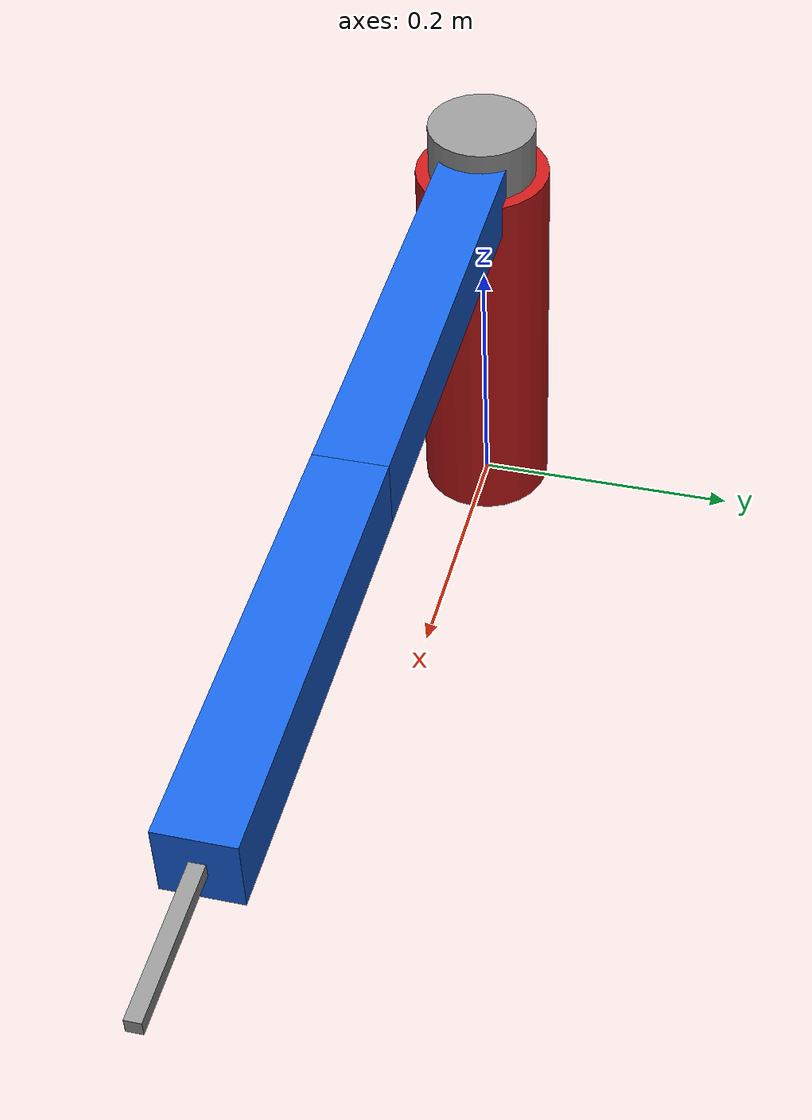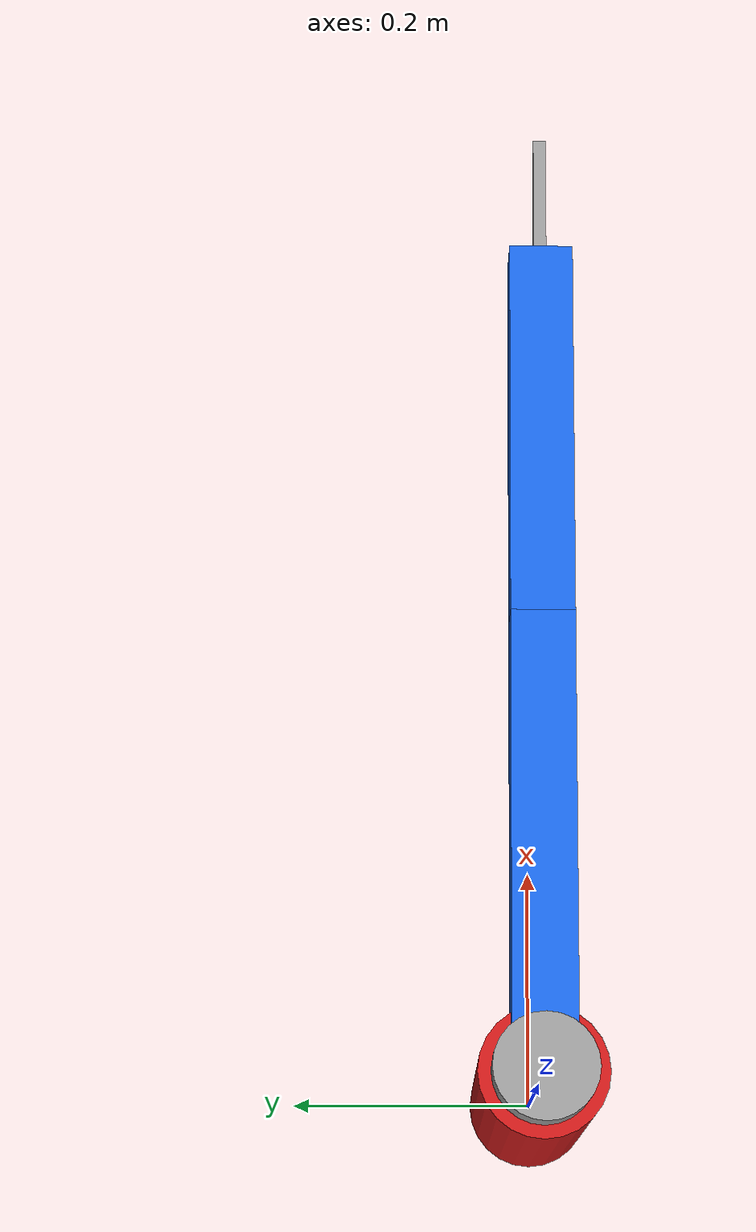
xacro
<?xml version="1.0"?>
<robot xmlns:xacro="http://www.ros.org/wiki/xacro" name="arm_digital_twin">

  <!-- ===================== PROPIEDADES ===================== -->

  <!-- Base -->
  <xacro:property name="H_BASE" value="0.30"/>
  <xacro:property name="R_BASE" value="0.05"/>

  <xacro:property name="H_TURRET" value="0.04"/>
  <xacro:property name="R_TURRET" value="0.04"/>

  <!-- Links -->
  <xacro:property name="L1" value="0.35"/>
  <xacro:property name="L2" value="0.30"/>
  <xacro:property name="W"  value="0.05"/>

  <!-- Gripper -->
  <xacro:property name="GRIP_LEN" value="0.10"/>
  <xacro:property name="GRIP_W"   value="0.01"/>

  <!-- Hombro al final del cilindro base -->
  <xacro:property name="Z_SHOULDER" value="${H_BASE}"/>

  <!-- Materiales -->
  <material name="Red">
    <color rgba="0.80 0.10 0.10 1.0"/>
  </material>

  <material name="Blue">
    <color rgba="0.10 0.40 0.90 1.0"/>
  </material>

  <material name="Gray">
    <color rgba="0.60 0.60 0.60 1.0"/>
  </material>

  <!-- ===================== BASE ===================== -->

  <link name="base_link">
    <visual>
      <geometry>
        <cylinder radius="${R_BASE}" length="${H_BASE}"/>
      </geometry>
      <origin xyz="0 0 ${H_BASE/2}" rpy="0 0 0"/>
      <material name="Red"/>
    </visual>

    <collision>
      <geometry>
        <cylinder radius="${R_BASE}" length="${H_BASE}"/>
      </geometry>
      <origin xyz="0 0 ${H_BASE/2}" rpy="0 0 0"/>
    </collision>

    <inertial>
      <origin xyz="0 0 ${H_BASE/2}" rpy="0 0 0"/>
      <mass value="6.0"/>
      <inertia
        ixx="0.04625" ixy="0.0" ixz="0.0"
        iyy="0.04625" iyz="0.0"
        izz="0.00750"/>
    </inertial>
  </link>

  <link name="base_rot">
    <visual>
      <geometry>
        <cylinder radius="${R_TURRET}" length="${H_TURRET}"/>
      </geometry>
      <origin xyz="0 0 ${H_BASE + H_TURRET/2}" rpy="0 0 0"/>
      <material name="Gray"/>
    </visual>

    <collision>
      <geometry>
        <cylinder radius="${R_TURRET}" length="${H_TURRET}"/>
      </geometry>
      <origin xyz="0 0 ${H_BASE + H_TURRET/2}" rpy="0 0 0"/>
    </collision>

    <inertial>
      <origin xyz="0 0 ${H_BASE + H_TURRET/2}" rpy="0 0 0"/>
      <mass value="1.0"/>
      <inertia
        ixx="0.00053" ixy="0.0" ixz="0.0"
        iyy="0.00053" iyz="0.0"
        izz="0.00080"/>
    </inertial>
  </link>

  <joint name="joint1" type="revolute">
    <parent link="base_link"/>
    <child link="base_rot"/>
    <origin xyz="0 0 0" rpy="0 0 0"/>
    <axis xyz="0 0 1"/>
    <limit lower="-2.96705972839" upper="2.96705972839" effort="10.0" velocity="2.0"/>
    <dynamics damping="0.5" friction="0.1"/>
  </joint>

  <!-- ===================== LINK1 ===================== -->

  <link name="link1">
    <visual>
      <geometry>
        <box size="${L1} ${W} ${W}"/>
      </geometry>
      <origin xyz="${L1/2} 0 0" rpy="0 0 0"/>
      <material name="Blue"/>
    </visual>

    <collision>
      <geometry>
        <box size="${L1} ${W} ${W}"/>
      </geometry>
      <origin xyz="${L1/2} 0 0" rpy="0 0 0"/>
    </collision>

    <inertial>
      <origin xyz="${L1/2} 0 0" rpy="0 0 0"/>
      <mass value="1.0"/>
      <inertia
        ixx="0.00042" ixy="0.0" ixz="0.0"
        iyy="0.01042" iyz="0.0"
        izz="0.01042"/>
    </inertial>
  </link>

  <joint name="joint2" type="revolute">
    <parent link="base_rot"/>
    <child link="link1"/>
    <origin xyz="0 0 ${Z_SHOULDER}" rpy="0 0 0"/>
    <axis xyz="0 1 0"/>
    <limit lower="-1.57079632679" upper="1.57079632679" effort="10.0" velocity="2.0"/>
    <dynamics damping="0.5" friction="0.1"/>
  </joint>

  <!-- ===================== LINK2 ===================== -->

  <link name="link2">
    <visual>
      <geometry>
        <box size="${L2} ${W} ${W}"/>
      </geometry>
      <origin xyz="${L2/2} 0 0" rpy="0 0 0"/>
      <material name="Blue"/>
    </visual>

    <collision>
      <geometry>
        <box size="${L2} ${W} ${W}"/>
      </geometry>
      <origin xyz="${L2/2} 0 0" rpy="0 0 0"/>
    </collision>

    <inertial>
      <origin xyz="${L2/2} 0 0" rpy="0 0 0"/>
      <mass value="0.8"/>
      <inertia
        ixx="0.00032" ixy="0.0" ixz="0.0"
        iyy="0.00672" iyz="0.0"
        izz="0.00672"/>
    </inertial>
  </link>

  <joint name="joint3" type="revolute">
    <parent link="link1"/>
    <child link="link2"/>
    <origin xyz="${L1} 0 0" rpy="0 0 0"/>
    <axis xyz="0 1 0"/>
    <limit lower="-1.57079632679" upper="1.57079632679" effort="10.0" velocity="2.0"/>
    <dynamics damping="0.5" friction="0.1"/>
  </joint>

  <!-- ===================== GRIPPER ===================== -->

  <link name="gripper_base">
    <inertial>
      <origin xyz="0 0 0" rpy="0 0 0"/>
      <mass value="0.01"/>
      <inertia
        ixx="0.000001" ixy="0.0" ixz="0.0"
        iyy="0.000001" iyz="0.0"
        izz="0.000001"/>
    </inertial>
  </link>

  <joint name="gripper_mount" type="fixed">
    <parent link="link2"/>
    <child link="gripper_base"/>
    <origin xyz="${L2} 0 0" rpy="0 0 0"/>
  </joint>

  <!-- Dedo izquierdo -->
  <link name="finger_left">
    <visual>
      <geometry>
        <box size="${GRIP_LEN} ${GRIP_W} ${GRIP_W}"/>
      </geometry>
      <origin xyz="${GRIP_LEN/2} 0 0" rpy="0 0 0"/>
      <material name="Gray"/>
    </visual>

    <collision>
      <geometry>
        <box size="${GRIP_LEN} ${GRIP_W} ${GRIP_W}"/>
      </geometry>
      <origin xyz="${GRIP_LEN/2} 0 0" rpy="0 0 0"/>
    </collision>

    <inertial>
      <origin xyz="${GRIP_LEN/2} 0 0" rpy="0 0 0"/>
      <mass value="0.05"/>
      <inertia
        ixx="0.0000033" ixy="0.0" ixz="0.0"
        iyy="0.0000433" iyz="0.0"
        izz="0.0000433"/>
    </inertial>
  </link>

  <joint name="gripper_joint" type="prismatic">
    <parent link="gripper_base"/>
    <child link="finger_left"/>
    <origin xyz="0 0 0" rpy="0 0 0"/>
    <axis xyz="0 1 0"/>
    <limit lower="0.0" upper="0.04" effort="10" velocity="0.2"/>
    <dynamics damping="0.5" friction="0.1"/>
  </joint>

  <!-- Dedo derecho -->
  <link name="finger_right">
    <visual>
      <geometry>
        <box size="${GRIP_LEN} ${GRIP_W} ${GRIP_W}"/>
      </geometry>
      <origin xyz="${GRIP_LEN/2} 0 0" rpy="0 0 0"/>
      <material name="Gray"/>
    </visual>

    <collision>
      <geometry>
        <box size="${GRIP_LEN} ${GRIP_W} ${GRIP_W}"/>
      </geometry>
      <origin xyz="${GRIP_LEN/2} 0 0" rpy="0 0 0"/>
    </collision>

    <inertial>
      <origin xyz="${GRIP_LEN/2} 0 0" rpy="0 0 0"/>
      <mass value="0.05"/>
      <inertia
        ixx="0.0000033" ixy="0.0" ixz="0.0"
        iyy="0.0000433" iyz="0.0"
        izz="0.0000433"/>
    </inertial>
  </link>

  <joint name="gripper_joint_mirror" type="prismatic">
    <parent link="gripper_base"/>
    <child link="finger_right"/>
    <origin xyz="0 0 0" rpy="0 0 0"/>
    <axis xyz="0 -1 0"/>
    <limit lower="0.0" upper="0.04" effort="10" velocity="0.2"/>
    <dynamics damping="0.5" friction="0.1"/>
  </joint>

  <!-- ===================== ROS2 CONTROL ===================== -->

  <ros2_control name="GazeboSystem" type="system">
    <hardware>
      <plugin>gazebo_ros2_control/GazeboSystem</plugin>
    </hardware>

    <joint name="joint1">
      <command_interface name="position"/>
      <state_interface name="position"/>
      <state_interface name="velocity"/>
    </joint>

    <joint name="joint2">
      <command_interface name="position"/>
      <state_interface name="position"/>
      <state_interface name="velocity"/>
    </joint>

    <joint name="joint3">
      <command_interface name="position"/>
      <state_interface name="position"/>
      <state_interface name="velocity"/>
    </joint>

    <joint name="gripper_joint">
      <command_interface name="position"/>
      <state_interface name="position"/>
      <state_interface name="velocity"/>
    </joint>

    <joint name="gripper_joint_mirror">
      <command_interface name="position"/>
      <state_interface name="position"/>
      <state_interface name="velocity"/>
    </joint>
  </ros2_control>

  <!-- ===================== GAZEBO ===================== -->

  <gazebo>
    <plugin name="gazebo_ros2_control" filename="libgazebo_ros2_control.so">
      <robot_param>robot_description</robot_param>
      <parameters>$(find arm_digital_twin)/config/controllers.yaml</parameters>
    </plugin>
  </gazebo>

</robot>
